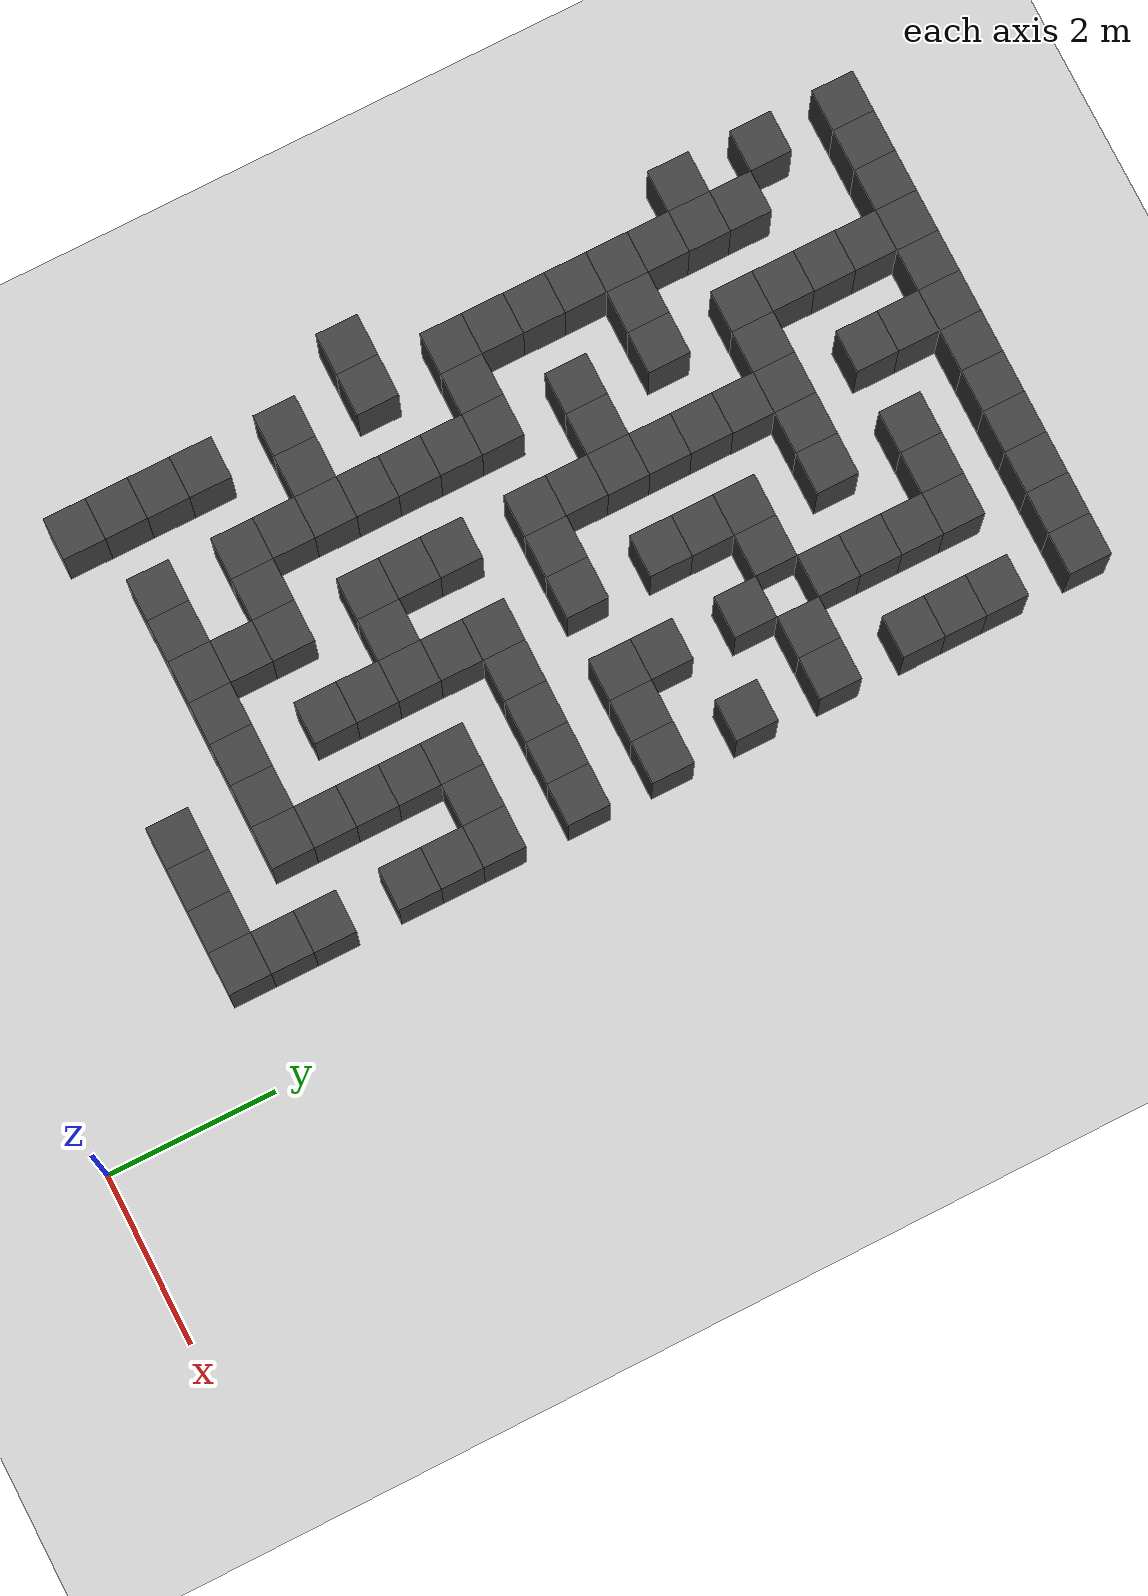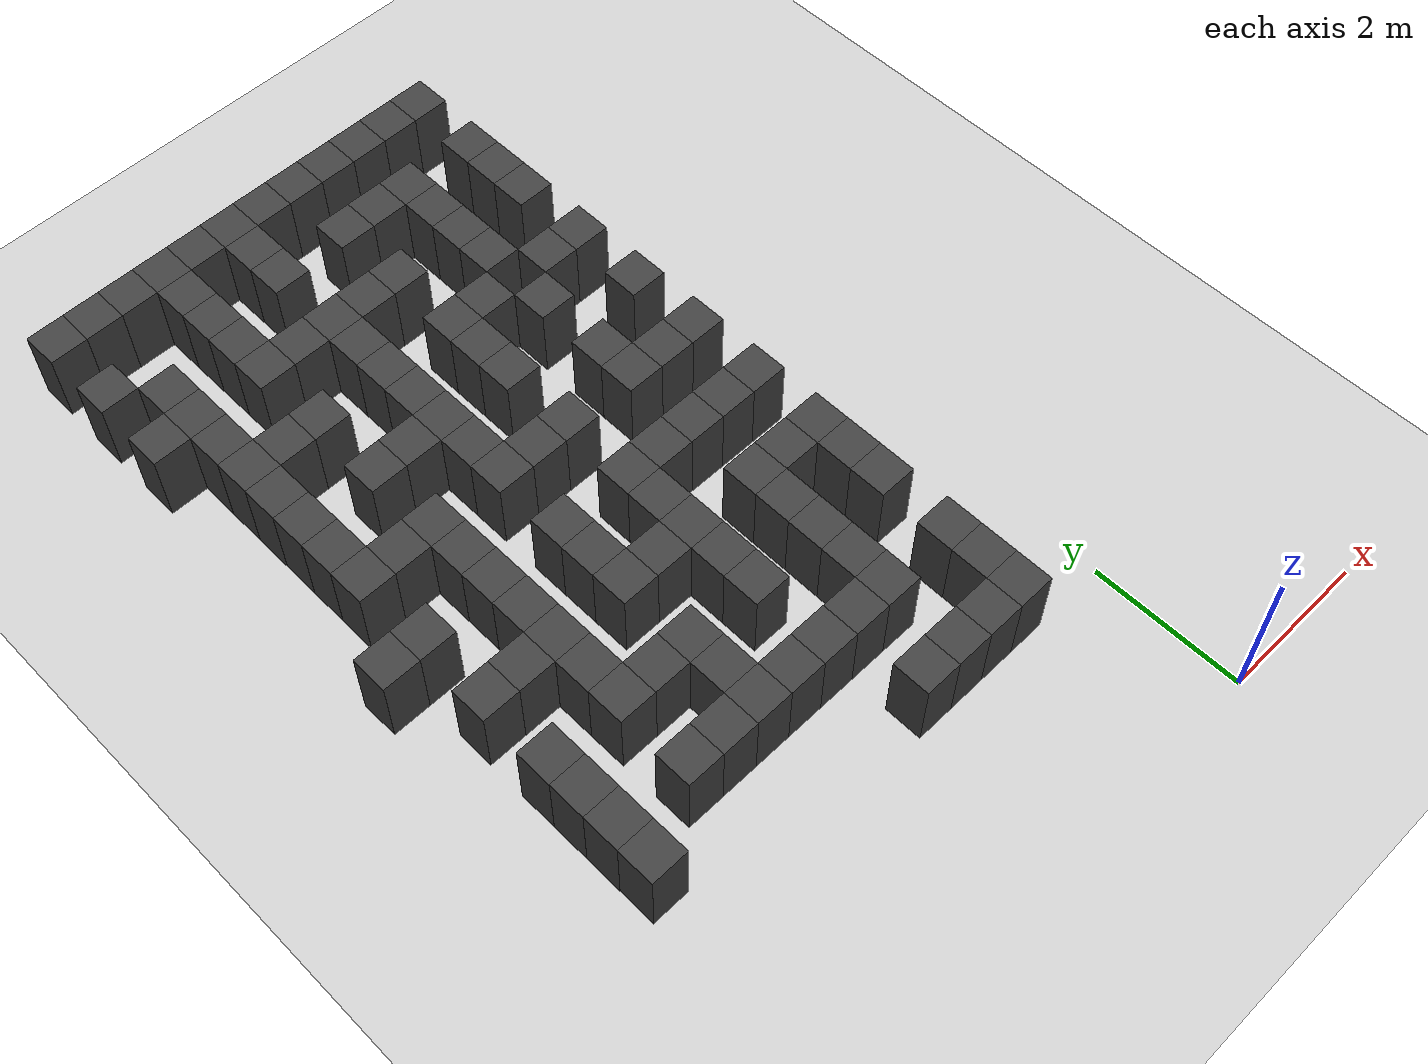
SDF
<sdf version="1.7">
 <world name="map_18505">
  <model name="ground_plane">
   <static>true</static>
   <link name="link">
    <collision name="collision">
     <geometry><plane><normal>0 0 1</normal><size>200 200</size></plane></geometry>
    </collision>
    <visual name="visual">
     <geometry><plane><normal>0 0 1</normal><size>200 200</size></plane></geometry>
     <material><ambient>0.8 0.8 0.8 1</ambient><diffuse>0.8 0.8 0.8 1</diffuse></material>
    </visual>
   </link>
  </model>
  <model name="maze_environment">
   <static>true</static>
   <link name="wall_11">
    <pose>-6.750 12.250 0.500 0 0 0</pose>
    <collision name="col"><geometry><box><size>0.5 0.5 1.0</size></box></geometry></collision>
    <visual name="vis">
     <geometry><box><size>0.5 0.5 1.0</size></box></geometry>
     <material><ambient>0.15 0.15 0.15 1</ambient><diffuse>0.25 0.25 0.25 1</diffuse></material>
    </visual>
   </link>
   <link name="wall_12">
    <pose>-6.250 12.250 0.500 0 0 0</pose>
    <collision name="col"><geometry><box><size>0.5 0.5 1.0</size></box></geometry></collision>
    <visual name="vis">
     <geometry><box><size>0.5 0.5 1.0</size></box></geometry>
     <material><ambient>0.15 0.15 0.15 1</ambient><diffuse>0.25 0.25 0.25 1</diffuse></material>
    </visual>
   </link>
   <link name="wall_13">
    <pose>-5.750 12.250 0.500 0 0 0</pose>
    <collision name="col"><geometry><box><size>0.5 0.5 1.0</size></box></geometry></collision>
    <visual name="vis">
     <geometry><box><size>0.5 0.5 1.0</size></box></geometry>
     <material><ambient>0.15 0.15 0.15 1</ambient><diffuse>0.25 0.25 0.25 1</diffuse></material>
    </visual>
   </link>
   <link name="wall_14">
    <pose>-5.250 12.250 0.500 0 0 0</pose>
    <collision name="col"><geometry><box><size>0.5 0.5 1.0</size></box></geometry></collision>
    <visual name="vis">
     <geometry><box><size>0.5 0.5 1.0</size></box></geometry>
     <material><ambient>0.15 0.15 0.15 1</ambient><diffuse>0.25 0.25 0.25 1</diffuse></material>
    </visual>
   </link>
   <link name="wall_15">
    <pose>-4.750 12.250 0.500 0 0 0</pose>
    <collision name="col"><geometry><box><size>0.5 0.5 1.0</size></box></geometry></collision>
    <visual name="vis">
     <geometry><box><size>0.5 0.5 1.0</size></box></geometry>
     <material><ambient>0.15 0.15 0.15 1</ambient><diffuse>0.25 0.25 0.25 1</diffuse></material>
    </visual>
   </link>
   <link name="wall_16">
    <pose>-4.250 12.250 0.500 0 0 0</pose>
    <collision name="col"><geometry><box><size>0.5 0.5 1.0</size></box></geometry></collision>
    <visual name="vis">
     <geometry><box><size>0.5 0.5 1.0</size></box></geometry>
     <material><ambient>0.15 0.15 0.15 1</ambient><diffuse>0.25 0.25 0.25 1</diffuse></material>
    </visual>
   </link>
   <link name="wall_17">
    <pose>-3.750 12.250 0.500 0 0 0</pose>
    <collision name="col"><geometry><box><size>0.5 0.5 1.0</size></box></geometry></collision>
    <visual name="vis">
     <geometry><box><size>0.5 0.5 1.0</size></box></geometry>
     <material><ambient>0.15 0.15 0.15 1</ambient><diffuse>0.25 0.25 0.25 1</diffuse></material>
    </visual>
   </link>
   <link name="wall_18">
    <pose>-3.250 12.250 0.500 0 0 0</pose>
    <collision name="col"><geometry><box><size>0.5 0.5 1.0</size></box></geometry></collision>
    <visual name="vis">
     <geometry><box><size>0.5 0.5 1.0</size></box></geometry>
     <material><ambient>0.15 0.15 0.15 1</ambient><diffuse>0.25 0.25 0.25 1</diffuse></material>
    </visual>
   </link>
   <link name="wall_19">
    <pose>-2.750 12.250 0.500 0 0 0</pose>
    <collision name="col"><geometry><box><size>0.5 0.5 1.0</size></box></geometry></collision>
    <visual name="vis">
     <geometry><box><size>0.5 0.5 1.0</size></box></geometry>
     <material><ambient>0.15 0.15 0.15 1</ambient><diffuse>0.25 0.25 0.25 1</diffuse></material>
    </visual>
   </link>
   <link name="wall_20">
    <pose>-2.250 12.250 0.500 0 0 0</pose>
    <collision name="col"><geometry><box><size>0.5 0.5 1.0</size></box></geometry></collision>
    <visual name="vis">
     <geometry><box><size>0.5 0.5 1.0</size></box></geometry>
     <material><ambient>0.15 0.15 0.15 1</ambient><diffuse>0.25 0.25 0.25 1</diffuse></material>
    </visual>
   </link>
   <link name="wall_21">
    <pose>-1.750 12.250 0.500 0 0 0</pose>
    <collision name="col"><geometry><box><size>0.5 0.5 1.0</size></box></geometry></collision>
    <visual name="vis">
     <geometry><box><size>0.5 0.5 1.0</size></box></geometry>
     <material><ambient>0.15 0.15 0.15 1</ambient><diffuse>0.25 0.25 0.25 1</diffuse></material>
    </visual>
   </link>
   <link name="wall_22">
    <pose>-1.250 12.250 0.500 0 0 0</pose>
    <collision name="col"><geometry><box><size>0.5 0.5 1.0</size></box></geometry></collision>
    <visual name="vis">
     <geometry><box><size>0.5 0.5 1.0</size></box></geometry>
     <material><ambient>0.15 0.15 0.15 1</ambient><diffuse>0.25 0.25 0.25 1</diffuse></material>
    </visual>
   </link>
   <link name="wall_52">
    <pose>-5.250 11.750 0.500 0 0 0</pose>
    <collision name="col"><geometry><box><size>0.5 0.5 1.0</size></box></geometry></collision>
    <visual name="vis">
     <geometry><box><size>0.5 0.5 1.0</size></box></geometry>
     <material><ambient>0.15 0.15 0.15 1</ambient><diffuse>0.25 0.25 0.25 1</diffuse></material>
    </visual>
   </link>
   <link name="wall_53">
    <pose>-4.250 11.750 0.500 0 0 0</pose>
    <collision name="col"><geometry><box><size>0.5 0.5 1.0</size></box></geometry></collision>
    <visual name="vis">
     <geometry><box><size>0.5 0.5 1.0</size></box></geometry>
     <material><ambient>0.15 0.15 0.15 1</ambient><diffuse>0.25 0.25 0.25 1</diffuse></material>
    </visual>
   </link>
   <link name="wall_68">
    <pose>-6.750 11.250 0.500 0 0 0</pose>
    <collision name="col"><geometry><box><size>0.5 0.5 1.0</size></box></geometry></collision>
    <visual name="vis">
     <geometry><box><size>0.5 0.5 1.0</size></box></geometry>
     <material><ambient>0.15 0.15 0.15 1</ambient><diffuse>0.25 0.25 0.25 1</diffuse></material>
    </visual>
   </link>
   <link name="wall_69">
    <pose>-5.250 11.250 0.500 0 0 0</pose>
    <collision name="col"><geometry><box><size>0.5 0.5 1.0</size></box></geometry></collision>
    <visual name="vis">
     <geometry><box><size>0.5 0.5 1.0</size></box></geometry>
     <material><ambient>0.15 0.15 0.15 1</ambient><diffuse>0.25 0.25 0.25 1</diffuse></material>
    </visual>
   </link>
   <link name="wall_70">
    <pose>-4.250 11.250 0.500 0 0 0</pose>
    <collision name="col"><geometry><box><size>0.5 0.5 1.0</size></box></geometry></collision>
    <visual name="vis">
     <geometry><box><size>0.5 0.5 1.0</size></box></geometry>
     <material><ambient>0.15 0.15 0.15 1</ambient><diffuse>0.25 0.25 0.25 1</diffuse></material>
    </visual>
   </link>
   <link name="wall_71">
    <pose>-3.250 11.250 0.500 0 0 0</pose>
    <collision name="col"><geometry><box><size>0.5 0.5 1.0</size></box></geometry></collision>
    <visual name="vis">
     <geometry><box><size>0.5 0.5 1.0</size></box></geometry>
     <material><ambient>0.15 0.15 0.15 1</ambient><diffuse>0.25 0.25 0.25 1</diffuse></material>
    </visual>
   </link>
   <link name="wall_72">
    <pose>-2.750 11.250 0.500 0 0 0</pose>
    <collision name="col"><geometry><box><size>0.5 0.5 1.0</size></box></geometry></collision>
    <visual name="vis">
     <geometry><box><size>0.5 0.5 1.0</size></box></geometry>
     <material><ambient>0.15 0.15 0.15 1</ambient><diffuse>0.25 0.25 0.25 1</diffuse></material>
    </visual>
   </link>
   <link name="wall_73">
    <pose>-2.250 11.250 0.500 0 0 0</pose>
    <collision name="col"><geometry><box><size>0.5 0.5 1.0</size></box></geometry></collision>
    <visual name="vis">
     <geometry><box><size>0.5 0.5 1.0</size></box></geometry>
     <material><ambient>0.15 0.15 0.15 1</ambient><diffuse>0.25 0.25 0.25 1</diffuse></material>
    </visual>
   </link>
   <link name="wall_74">
    <pose>-1.250 11.250 0.500 0 0 0</pose>
    <collision name="col"><geometry><box><size>0.5 0.5 1.0</size></box></geometry></collision>
    <visual name="vis">
     <geometry><box><size>0.5 0.5 1.0</size></box></geometry>
     <material><ambient>0.15 0.15 0.15 1</ambient><diffuse>0.25 0.25 0.25 1</diffuse></material>
    </visual>
   </link>
   <link name="wall_98">
    <pose>-6.250 10.750 0.500 0 0 0</pose>
    <collision name="col"><geometry><box><size>0.5 0.5 1.0</size></box></geometry></collision>
    <visual name="vis">
     <geometry><box><size>0.5 0.5 1.0</size></box></geometry>
     <material><ambient>0.15 0.15 0.15 1</ambient><diffuse>0.25 0.25 0.25 1</diffuse></material>
    </visual>
   </link>
   <link name="wall_99">
    <pose>-5.250 10.750 0.500 0 0 0</pose>
    <collision name="col"><geometry><box><size>0.5 0.5 1.0</size></box></geometry></collision>
    <visual name="vis">
     <geometry><box><size>0.5 0.5 1.0</size></box></geometry>
     <material><ambient>0.15 0.15 0.15 1</ambient><diffuse>0.25 0.25 0.25 1</diffuse></material>
    </visual>
   </link>
   <link name="wall_100">
    <pose>-2.250 10.750 0.500 0 0 0</pose>
    <collision name="col"><geometry><box><size>0.5 0.5 1.0</size></box></geometry></collision>
    <visual name="vis">
     <geometry><box><size>0.5 0.5 1.0</size></box></geometry>
     <material><ambient>0.15 0.15 0.15 1</ambient><diffuse>0.25 0.25 0.25 1</diffuse></material>
    </visual>
   </link>
   <link name="wall_101">
    <pose>-1.250 10.750 0.500 0 0 0</pose>
    <collision name="col"><geometry><box><size>0.5 0.5 1.0</size></box></geometry></collision>
    <visual name="vis">
     <geometry><box><size>0.5 0.5 1.0</size></box></geometry>
     <material><ambient>0.15 0.15 0.15 1</ambient><diffuse>0.25 0.25 0.25 1</diffuse></material>
    </visual>
   </link>
   <link name="wall_116">
    <pose>-6.750 10.250 0.500 0 0 0</pose>
    <collision name="col"><geometry><box><size>0.5 0.5 1.0</size></box></geometry></collision>
    <visual name="vis">
     <geometry><box><size>0.5 0.5 1.0</size></box></geometry>
     <material><ambient>0.15 0.15 0.15 1</ambient><diffuse>0.25 0.25 0.25 1</diffuse></material>
    </visual>
   </link>
   <link name="wall_117">
    <pose>-6.250 10.250 0.500 0 0 0</pose>
    <collision name="col"><geometry><box><size>0.5 0.5 1.0</size></box></geometry></collision>
    <visual name="vis">
     <geometry><box><size>0.5 0.5 1.0</size></box></geometry>
     <material><ambient>0.15 0.15 0.15 1</ambient><diffuse>0.25 0.25 0.25 1</diffuse></material>
    </visual>
   </link>
   <link name="wall_118">
    <pose>-5.250 10.250 0.500 0 0 0</pose>
    <collision name="col"><geometry><box><size>0.5 0.5 1.0</size></box></geometry></collision>
    <visual name="vis">
     <geometry><box><size>0.5 0.5 1.0</size></box></geometry>
     <material><ambient>0.15 0.15 0.15 1</ambient><diffuse>0.25 0.25 0.25 1</diffuse></material>
    </visual>
   </link>
   <link name="wall_119">
    <pose>-4.750 10.250 0.500 0 0 0</pose>
    <collision name="col"><geometry><box><size>0.5 0.5 1.0</size></box></geometry></collision>
    <visual name="vis">
     <geometry><box><size>0.5 0.5 1.0</size></box></geometry>
     <material><ambient>0.15 0.15 0.15 1</ambient><diffuse>0.25 0.25 0.25 1</diffuse></material>
    </visual>
   </link>
   <link name="wall_120">
    <pose>-4.250 10.250 0.500 0 0 0</pose>
    <collision name="col"><geometry><box><size>0.5 0.5 1.0</size></box></geometry></collision>
    <visual name="vis">
     <geometry><box><size>0.5 0.5 1.0</size></box></geometry>
     <material><ambient>0.15 0.15 0.15 1</ambient><diffuse>0.25 0.25 0.25 1</diffuse></material>
    </visual>
   </link>
   <link name="wall_121">
    <pose>-3.750 10.250 0.500 0 0 0</pose>
    <collision name="col"><geometry><box><size>0.5 0.5 1.0</size></box></geometry></collision>
    <visual name="vis">
     <geometry><box><size>0.5 0.5 1.0</size></box></geometry>
     <material><ambient>0.15 0.15 0.15 1</ambient><diffuse>0.25 0.25 0.25 1</diffuse></material>
    </visual>
   </link>
   <link name="wall_122">
    <pose>-3.250 10.250 0.500 0 0 0</pose>
    <collision name="col"><geometry><box><size>0.5 0.5 1.0</size></box></geometry></collision>
    <visual name="vis">
     <geometry><box><size>0.5 0.5 1.0</size></box></geometry>
     <material><ambient>0.15 0.15 0.15 1</ambient><diffuse>0.25 0.25 0.25 1</diffuse></material>
    </visual>
   </link>
   <link name="wall_123">
    <pose>-2.250 10.250 0.500 0 0 0</pose>
    <collision name="col"><geometry><box><size>0.5 0.5 1.0</size></box></geometry></collision>
    <visual name="vis">
     <geometry><box><size>0.5 0.5 1.0</size></box></geometry>
     <material><ambient>0.15 0.15 0.15 1</ambient><diffuse>0.25 0.25 0.25 1</diffuse></material>
    </visual>
   </link>
   <link name="wall_124">
    <pose>-1.250 10.250 0.500 0 0 0</pose>
    <collision name="col"><geometry><box><size>0.5 0.5 1.0</size></box></geometry></collision>
    <visual name="vis">
     <geometry><box><size>0.5 0.5 1.0</size></box></geometry>
     <material><ambient>0.15 0.15 0.15 1</ambient><diffuse>0.25 0.25 0.25 1</diffuse></material>
    </visual>
   </link>
   <link name="wall_148">
    <pose>-6.250 9.750 0.500 0 0 0</pose>
    <collision name="col"><geometry><box><size>0.5 0.5 1.0</size></box></geometry></collision>
    <visual name="vis">
     <geometry><box><size>0.5 0.5 1.0</size></box></geometry>
     <material><ambient>0.15 0.15 0.15 1</ambient><diffuse>0.25 0.25 0.25 1</diffuse></material>
    </visual>
   </link>
   <link name="wall_149">
    <pose>-4.250 9.750 0.500 0 0 0</pose>
    <collision name="col"><geometry><box><size>0.5 0.5 1.0</size></box></geometry></collision>
    <visual name="vis">
     <geometry><box><size>0.5 0.5 1.0</size></box></geometry>
     <material><ambient>0.15 0.15 0.15 1</ambient><diffuse>0.25 0.25 0.25 1</diffuse></material>
    </visual>
   </link>
   <link name="wall_150">
    <pose>-2.250 9.750 0.500 0 0 0</pose>
    <collision name="col"><geometry><box><size>0.5 0.5 1.0</size></box></geometry></collision>
    <visual name="vis">
     <geometry><box><size>0.5 0.5 1.0</size></box></geometry>
     <material><ambient>0.15 0.15 0.15 1</ambient><diffuse>0.25 0.25 0.25 1</diffuse></material>
    </visual>
   </link>
   <link name="wall_166">
    <pose>-6.250 9.250 0.500 0 0 0</pose>
    <collision name="col"><geometry><box><size>0.5 0.5 1.0</size></box></geometry></collision>
    <visual name="vis">
     <geometry><box><size>0.5 0.5 1.0</size></box></geometry>
     <material><ambient>0.15 0.15 0.15 1</ambient><diffuse>0.25 0.25 0.25 1</diffuse></material>
    </visual>
   </link>
   <link name="wall_167">
    <pose>-5.750 9.250 0.500 0 0 0</pose>
    <collision name="col"><geometry><box><size>0.5 0.5 1.0</size></box></geometry></collision>
    <visual name="vis">
     <geometry><box><size>0.5 0.5 1.0</size></box></geometry>
     <material><ambient>0.15 0.15 0.15 1</ambient><diffuse>0.25 0.25 0.25 1</diffuse></material>
    </visual>
   </link>
   <link name="wall_168">
    <pose>-5.250 9.250 0.500 0 0 0</pose>
    <collision name="col"><geometry><box><size>0.5 0.5 1.0</size></box></geometry></collision>
    <visual name="vis">
     <geometry><box><size>0.5 0.5 1.0</size></box></geometry>
     <material><ambient>0.15 0.15 0.15 1</ambient><diffuse>0.25 0.25 0.25 1</diffuse></material>
    </visual>
   </link>
   <link name="wall_169">
    <pose>-4.250 9.250 0.500 0 0 0</pose>
    <collision name="col"><geometry><box><size>0.5 0.5 1.0</size></box></geometry></collision>
    <visual name="vis">
     <geometry><box><size>0.5 0.5 1.0</size></box></geometry>
     <material><ambient>0.15 0.15 0.15 1</ambient><diffuse>0.25 0.25 0.25 1</diffuse></material>
    </visual>
   </link>
   <link name="wall_170">
    <pose>-3.250 9.250 0.500 0 0 0</pose>
    <collision name="col"><geometry><box><size>0.5 0.5 1.0</size></box></geometry></collision>
    <visual name="vis">
     <geometry><box><size>0.5 0.5 1.0</size></box></geometry>
     <material><ambient>0.15 0.15 0.15 1</ambient><diffuse>0.25 0.25 0.25 1</diffuse></material>
    </visual>
   </link>
   <link name="wall_171">
    <pose>-2.750 9.250 0.500 0 0 0</pose>
    <collision name="col"><geometry><box><size>0.5 0.5 1.0</size></box></geometry></collision>
    <visual name="vis">
     <geometry><box><size>0.5 0.5 1.0</size></box></geometry>
     <material><ambient>0.15 0.15 0.15 1</ambient><diffuse>0.25 0.25 0.25 1</diffuse></material>
    </visual>
   </link>
   <link name="wall_172">
    <pose>-1.750 9.250 0.500 0 0 0</pose>
    <collision name="col"><geometry><box><size>0.5 0.5 1.0</size></box></geometry></collision>
    <visual name="vis">
     <geometry><box><size>0.5 0.5 1.0</size></box></geometry>
     <material><ambient>0.15 0.15 0.15 1</ambient><diffuse>0.25 0.25 0.25 1</diffuse></material>
    </visual>
   </link>
   <link name="wall_173">
    <pose>-1.250 9.250 0.500 0 0 0</pose>
    <collision name="col"><geometry><box><size>0.5 0.5 1.0</size></box></geometry></collision>
    <visual name="vis">
     <geometry><box><size>0.5 0.5 1.0</size></box></geometry>
     <material><ambient>0.15 0.15 0.15 1</ambient><diffuse>0.25 0.25 0.25 1</diffuse></material>
    </visual>
   </link>
   <link name="wall_197">
    <pose>-6.250 8.750 0.500 0 0 0</pose>
    <collision name="col"><geometry><box><size>0.5 0.5 1.0</size></box></geometry></collision>
    <visual name="vis">
     <geometry><box><size>0.5 0.5 1.0</size></box></geometry>
     <material><ambient>0.15 0.15 0.15 1</ambient><diffuse>0.25 0.25 0.25 1</diffuse></material>
    </visual>
   </link>
   <link name="wall_198">
    <pose>-4.250 8.750 0.500 0 0 0</pose>
    <collision name="col"><geometry><box><size>0.5 0.5 1.0</size></box></geometry></collision>
    <visual name="vis">
     <geometry><box><size>0.5 0.5 1.0</size></box></geometry>
     <material><ambient>0.15 0.15 0.15 1</ambient><diffuse>0.25 0.25 0.25 1</diffuse></material>
    </visual>
   </link>
   <link name="wall_199">
    <pose>-3.250 8.750 0.500 0 0 0</pose>
    <collision name="col"><geometry><box><size>0.5 0.5 1.0</size></box></geometry></collision>
    <visual name="vis">
     <geometry><box><size>0.5 0.5 1.0</size></box></geometry>
     <material><ambient>0.15 0.15 0.15 1</ambient><diffuse>0.25 0.25 0.25 1</diffuse></material>
    </visual>
   </link>
   <link name="wall_200">
    <pose>-2.250 8.750 0.500 0 0 0</pose>
    <collision name="col"><geometry><box><size>0.5 0.5 1.0</size></box></geometry></collision>
    <visual name="vis">
     <geometry><box><size>0.5 0.5 1.0</size></box></geometry>
     <material><ambient>0.15 0.15 0.15 1</ambient><diffuse>0.25 0.25 0.25 1</diffuse></material>
    </visual>
   </link>
   <link name="wall_218">
    <pose>-6.250 8.250 0.500 0 0 0</pose>
    <collision name="col"><geometry><box><size>0.5 0.5 1.0</size></box></geometry></collision>
    <visual name="vis">
     <geometry><box><size>0.5 0.5 1.0</size></box></geometry>
     <material><ambient>0.15 0.15 0.15 1</ambient><diffuse>0.25 0.25 0.25 1</diffuse></material>
    </visual>
   </link>
   <link name="wall_219">
    <pose>-5.250 8.250 0.500 0 0 0</pose>
    <collision name="col"><geometry><box><size>0.5 0.5 1.0</size></box></geometry></collision>
    <visual name="vis">
     <geometry><box><size>0.5 0.5 1.0</size></box></geometry>
     <material><ambient>0.15 0.15 0.15 1</ambient><diffuse>0.25 0.25 0.25 1</diffuse></material>
    </visual>
   </link>
   <link name="wall_220">
    <pose>-4.750 8.250 0.500 0 0 0</pose>
    <collision name="col"><geometry><box><size>0.5 0.5 1.0</size></box></geometry></collision>
    <visual name="vis">
     <geometry><box><size>0.5 0.5 1.0</size></box></geometry>
     <material><ambient>0.15 0.15 0.15 1</ambient><diffuse>0.25 0.25 0.25 1</diffuse></material>
    </visual>
   </link>
   <link name="wall_221">
    <pose>-4.250 8.250 0.500 0 0 0</pose>
    <collision name="col"><geometry><box><size>0.5 0.5 1.0</size></box></geometry></collision>
    <visual name="vis">
     <geometry><box><size>0.5 0.5 1.0</size></box></geometry>
     <material><ambient>0.15 0.15 0.15 1</ambient><diffuse>0.25 0.25 0.25 1</diffuse></material>
    </visual>
   </link>
   <link name="wall_222">
    <pose>-3.250 8.250 0.500 0 0 0</pose>
    <collision name="col"><geometry><box><size>0.5 0.5 1.0</size></box></geometry></collision>
    <visual name="vis">
     <geometry><box><size>0.5 0.5 1.0</size></box></geometry>
     <material><ambient>0.15 0.15 0.15 1</ambient><diffuse>0.25 0.25 0.25 1</diffuse></material>
    </visual>
   </link>
   <link name="wall_223">
    <pose>-1.250 8.250 0.500 0 0 0</pose>
    <collision name="col"><geometry><box><size>0.5 0.5 1.0</size></box></geometry></collision>
    <visual name="vis">
     <geometry><box><size>0.5 0.5 1.0</size></box></geometry>
     <material><ambient>0.15 0.15 0.15 1</ambient><diffuse>0.25 0.25 0.25 1</diffuse></material>
    </visual>
   </link>
   <link name="wall_246">
    <pose>-6.250 7.750 0.500 0 0 0</pose>
    <collision name="col"><geometry><box><size>0.5 0.5 1.0</size></box></geometry></collision>
    <visual name="vis">
     <geometry><box><size>0.5 0.5 1.0</size></box></geometry>
     <material><ambient>0.15 0.15 0.15 1</ambient><diffuse>0.25 0.25 0.25 1</diffuse></material>
    </visual>
   </link>
   <link name="wall_247">
    <pose>-4.250 7.750 0.500 0 0 0</pose>
    <collision name="col"><geometry><box><size>0.5 0.5 1.0</size></box></geometry></collision>
    <visual name="vis">
     <geometry><box><size>0.5 0.5 1.0</size></box></geometry>
     <material><ambient>0.15 0.15 0.15 1</ambient><diffuse>0.25 0.25 0.25 1</diffuse></material>
    </visual>
   </link>
   <link name="wall_248">
    <pose>-2.250 7.750 0.500 0 0 0</pose>
    <collision name="col"><geometry><box><size>0.5 0.5 1.0</size></box></geometry></collision>
    <visual name="vis">
     <geometry><box><size>0.5 0.5 1.0</size></box></geometry>
     <material><ambient>0.15 0.15 0.15 1</ambient><diffuse>0.25 0.25 0.25 1</diffuse></material>
    </visual>
   </link>
   <link name="wall_265">
    <pose>-6.250 7.250 0.500 0 0 0</pose>
    <collision name="col"><geometry><box><size>0.5 0.5 1.0</size></box></geometry></collision>
    <visual name="vis">
     <geometry><box><size>0.5 0.5 1.0</size></box></geometry>
     <material><ambient>0.15 0.15 0.15 1</ambient><diffuse>0.25 0.25 0.25 1</diffuse></material>
    </visual>
   </link>
   <link name="wall_266">
    <pose>-5.750 7.250 0.500 0 0 0</pose>
    <collision name="col"><geometry><box><size>0.5 0.5 1.0</size></box></geometry></collision>
    <visual name="vis">
     <geometry><box><size>0.5 0.5 1.0</size></box></geometry>
     <material><ambient>0.15 0.15 0.15 1</ambient><diffuse>0.25 0.25 0.25 1</diffuse></material>
    </visual>
   </link>
   <link name="wall_267">
    <pose>-5.250 7.250 0.500 0 0 0</pose>
    <collision name="col"><geometry><box><size>0.5 0.5 1.0</size></box></geometry></collision>
    <visual name="vis">
     <geometry><box><size>0.5 0.5 1.0</size></box></geometry>
     <material><ambient>0.15 0.15 0.15 1</ambient><diffuse>0.25 0.25 0.25 1</diffuse></material>
    </visual>
   </link>
   <link name="wall_268">
    <pose>-4.250 7.250 0.500 0 0 0</pose>
    <collision name="col"><geometry><box><size>0.5 0.5 1.0</size></box></geometry></collision>
    <visual name="vis">
     <geometry><box><size>0.5 0.5 1.0</size></box></geometry>
     <material><ambient>0.15 0.15 0.15 1</ambient><diffuse>0.25 0.25 0.25 1</diffuse></material>
    </visual>
   </link>
   <link name="wall_269">
    <pose>-3.750 7.250 0.500 0 0 0</pose>
    <collision name="col"><geometry><box><size>0.5 0.5 1.0</size></box></geometry></collision>
    <visual name="vis">
     <geometry><box><size>0.5 0.5 1.0</size></box></geometry>
     <material><ambient>0.15 0.15 0.15 1</ambient><diffuse>0.25 0.25 0.25 1</diffuse></material>
    </visual>
   </link>
   <link name="wall_270">
    <pose>-3.250 7.250 0.500 0 0 0</pose>
    <collision name="col"><geometry><box><size>0.5 0.5 1.0</size></box></geometry></collision>
    <visual name="vis">
     <geometry><box><size>0.5 0.5 1.0</size></box></geometry>
     <material><ambient>0.15 0.15 0.15 1</ambient><diffuse>0.25 0.25 0.25 1</diffuse></material>
    </visual>
   </link>
   <link name="wall_271">
    <pose>-2.250 7.250 0.500 0 0 0</pose>
    <collision name="col"><geometry><box><size>0.5 0.5 1.0</size></box></geometry></collision>
    <visual name="vis">
     <geometry><box><size>0.5 0.5 1.0</size></box></geometry>
     <material><ambient>0.15 0.15 0.15 1</ambient><diffuse>0.25 0.25 0.25 1</diffuse></material>
    </visual>
   </link>
   <link name="wall_272">
    <pose>-1.750 7.250 0.500 0 0 0</pose>
    <collision name="col"><geometry><box><size>0.5 0.5 1.0</size></box></geometry></collision>
    <visual name="vis">
     <geometry><box><size>0.5 0.5 1.0</size></box></geometry>
     <material><ambient>0.15 0.15 0.15 1</ambient><diffuse>0.25 0.25 0.25 1</diffuse></material>
    </visual>
   </link>
   <link name="wall_273">
    <pose>-1.250 7.250 0.500 0 0 0</pose>
    <collision name="col"><geometry><box><size>0.5 0.5 1.0</size></box></geometry></collision>
    <visual name="vis">
     <geometry><box><size>0.5 0.5 1.0</size></box></geometry>
     <material><ambient>0.15 0.15 0.15 1</ambient><diffuse>0.25 0.25 0.25 1</diffuse></material>
    </visual>
   </link>
   <link name="wall_297">
    <pose>-5.250 6.750 0.500 0 0 0</pose>
    <collision name="col"><geometry><box><size>0.5 0.5 1.0</size></box></geometry></collision>
    <visual name="vis">
     <geometry><box><size>0.5 0.5 1.0</size></box></geometry>
     <material><ambient>0.15 0.15 0.15 1</ambient><diffuse>0.25 0.25 0.25 1</diffuse></material>
    </visual>
   </link>
   <link name="wall_314">
    <pose>-6.750 6.250 0.500 0 0 0</pose>
    <collision name="col"><geometry><box><size>0.5 0.5 1.0</size></box></geometry></collision>
    <visual name="vis">
     <geometry><box><size>0.5 0.5 1.0</size></box></geometry>
     <material><ambient>0.15 0.15 0.15 1</ambient><diffuse>0.25 0.25 0.25 1</diffuse></material>
    </visual>
   </link>
   <link name="wall_315">
    <pose>-6.250 6.250 0.500 0 0 0</pose>
    <collision name="col"><geometry><box><size>0.5 0.5 1.0</size></box></geometry></collision>
    <visual name="vis">
     <geometry><box><size>0.5 0.5 1.0</size></box></geometry>
     <material><ambient>0.15 0.15 0.15 1</ambient><diffuse>0.25 0.25 0.25 1</diffuse></material>
    </visual>
   </link>
   <link name="wall_316">
    <pose>-5.250 6.250 0.500 0 0 0</pose>
    <collision name="col"><geometry><box><size>0.5 0.5 1.0</size></box></geometry></collision>
    <visual name="vis">
     <geometry><box><size>0.5 0.5 1.0</size></box></geometry>
     <material><ambient>0.15 0.15 0.15 1</ambient><diffuse>0.25 0.25 0.25 1</diffuse></material>
    </visual>
   </link>
   <link name="wall_317">
    <pose>-4.250 6.250 0.500 0 0 0</pose>
    <collision name="col"><geometry><box><size>0.5 0.5 1.0</size></box></geometry></collision>
    <visual name="vis">
     <geometry><box><size>0.5 0.5 1.0</size></box></geometry>
     <material><ambient>0.15 0.15 0.15 1</ambient><diffuse>0.25 0.25 0.25 1</diffuse></material>
    </visual>
   </link>
   <link name="wall_318">
    <pose>-3.250 6.250 0.500 0 0 0</pose>
    <collision name="col"><geometry><box><size>0.5 0.5 1.0</size></box></geometry></collision>
    <visual name="vis">
     <geometry><box><size>0.5 0.5 1.0</size></box></geometry>
     <material><ambient>0.15 0.15 0.15 1</ambient><diffuse>0.25 0.25 0.25 1</diffuse></material>
    </visual>
   </link>
   <link name="wall_319">
    <pose>-2.750 6.250 0.500 0 0 0</pose>
    <collision name="col"><geometry><box><size>0.5 0.5 1.0</size></box></geometry></collision>
    <visual name="vis">
     <geometry><box><size>0.5 0.5 1.0</size></box></geometry>
     <material><ambient>0.15 0.15 0.15 1</ambient><diffuse>0.25 0.25 0.25 1</diffuse></material>
    </visual>
   </link>
   <link name="wall_320">
    <pose>-2.250 6.250 0.500 0 0 0</pose>
    <collision name="col"><geometry><box><size>0.5 0.5 1.0</size></box></geometry></collision>
    <visual name="vis">
     <geometry><box><size>0.5 0.5 1.0</size></box></geometry>
     <material><ambient>0.15 0.15 0.15 1</ambient><diffuse>0.25 0.25 0.25 1</diffuse></material>
    </visual>
   </link>
   <link name="wall_321">
    <pose>-1.750 6.250 0.500 0 0 0</pose>
    <collision name="col"><geometry><box><size>0.5 0.5 1.0</size></box></geometry></collision>
    <visual name="vis">
     <geometry><box><size>0.5 0.5 1.0</size></box></geometry>
     <material><ambient>0.15 0.15 0.15 1</ambient><diffuse>0.25 0.25 0.25 1</diffuse></material>
    </visual>
   </link>
   <link name="wall_322">
    <pose>-1.250 6.250 0.500 0 0 0</pose>
    <collision name="col"><geometry><box><size>0.5 0.5 1.0</size></box></geometry></collision>
    <visual name="vis">
     <geometry><box><size>0.5 0.5 1.0</size></box></geometry>
     <material><ambient>0.15 0.15 0.15 1</ambient><diffuse>0.25 0.25 0.25 1</diffuse></material>
    </visual>
   </link>
   <link name="wall_346">
    <pose>-5.250 5.750 0.500 0 0 0</pose>
    <collision name="col"><geometry><box><size>0.5 0.5 1.0</size></box></geometry></collision>
    <visual name="vis">
     <geometry><box><size>0.5 0.5 1.0</size></box></geometry>
     <material><ambient>0.15 0.15 0.15 1</ambient><diffuse>0.25 0.25 0.25 1</diffuse></material>
    </visual>
   </link>
   <link name="wall_347">
    <pose>-4.250 5.750 0.500 0 0 0</pose>
    <collision name="col"><geometry><box><size>0.5 0.5 1.0</size></box></geometry></collision>
    <visual name="vis">
     <geometry><box><size>0.5 0.5 1.0</size></box></geometry>
     <material><ambient>0.15 0.15 0.15 1</ambient><diffuse>0.25 0.25 0.25 1</diffuse></material>
    </visual>
   </link>
   <link name="wall_348">
    <pose>-3.250 5.750 0.500 0 0 0</pose>
    <collision name="col"><geometry><box><size>0.5 0.5 1.0</size></box></geometry></collision>
    <visual name="vis">
     <geometry><box><size>0.5 0.5 1.0</size></box></geometry>
     <material><ambient>0.15 0.15 0.15 1</ambient><diffuse>0.25 0.25 0.25 1</diffuse></material>
    </visual>
   </link>
   <link name="wall_367">
    <pose>-6.250 5.250 0.500 0 0 0</pose>
    <collision name="col"><geometry><box><size>0.5 0.5 1.0</size></box></geometry></collision>
    <visual name="vis">
     <geometry><box><size>0.5 0.5 1.0</size></box></geometry>
     <material><ambient>0.15 0.15 0.15 1</ambient><diffuse>0.25 0.25 0.25 1</diffuse></material>
    </visual>
   </link>
   <link name="wall_368">
    <pose>-5.750 5.250 0.500 0 0 0</pose>
    <collision name="col"><geometry><box><size>0.5 0.5 1.0</size></box></geometry></collision>
    <visual name="vis">
     <geometry><box><size>0.5 0.5 1.0</size></box></geometry>
     <material><ambient>0.15 0.15 0.15 1</ambient><diffuse>0.25 0.25 0.25 1</diffuse></material>
    </visual>
   </link>
   <link name="wall_369">
    <pose>-5.250 5.250 0.500 0 0 0</pose>
    <collision name="col"><geometry><box><size>0.5 0.5 1.0</size></box></geometry></collision>
    <visual name="vis">
     <geometry><box><size>0.5 0.5 1.0</size></box></geometry>
     <material><ambient>0.15 0.15 0.15 1</ambient><diffuse>0.25 0.25 0.25 1</diffuse></material>
    </visual>
   </link>
   <link name="wall_370">
    <pose>-4.250 5.250 0.500 0 0 0</pose>
    <collision name="col"><geometry><box><size>0.5 0.5 1.0</size></box></geometry></collision>
    <visual name="vis">
     <geometry><box><size>0.5 0.5 1.0</size></box></geometry>
     <material><ambient>0.15 0.15 0.15 1</ambient><diffuse>0.25 0.25 0.25 1</diffuse></material>
    </visual>
   </link>
   <link name="wall_371">
    <pose>-3.750 5.250 0.500 0 0 0</pose>
    <collision name="col"><geometry><box><size>0.5 0.5 1.0</size></box></geometry></collision>
    <visual name="vis">
     <geometry><box><size>0.5 0.5 1.0</size></box></geometry>
     <material><ambient>0.15 0.15 0.15 1</ambient><diffuse>0.25 0.25 0.25 1</diffuse></material>
    </visual>
   </link>
   <link name="wall_372">
    <pose>-3.250 5.250 0.500 0 0 0</pose>
    <collision name="col"><geometry><box><size>0.5 0.5 1.0</size></box></geometry></collision>
    <visual name="vis">
     <geometry><box><size>0.5 0.5 1.0</size></box></geometry>
     <material><ambient>0.15 0.15 0.15 1</ambient><diffuse>0.25 0.25 0.25 1</diffuse></material>
    </visual>
   </link>
   <link name="wall_373">
    <pose>-2.250 5.250 0.500 0 0 0</pose>
    <collision name="col"><geometry><box><size>0.5 0.5 1.0</size></box></geometry></collision>
    <visual name="vis">
     <geometry><box><size>0.5 0.5 1.0</size></box></geometry>
     <material><ambient>0.15 0.15 0.15 1</ambient><diffuse>0.25 0.25 0.25 1</diffuse></material>
    </visual>
   </link>
   <link name="wall_374">
    <pose>-1.750 5.250 0.500 0 0 0</pose>
    <collision name="col"><geometry><box><size>0.5 0.5 1.0</size></box></geometry></collision>
    <visual name="vis">
     <geometry><box><size>0.5 0.5 1.0</size></box></geometry>
     <material><ambient>0.15 0.15 0.15 1</ambient><diffuse>0.25 0.25 0.25 1</diffuse></material>
    </visual>
   </link>
   <link name="wall_375">
    <pose>-1.250 5.250 0.500 0 0 0</pose>
    <collision name="col"><geometry><box><size>0.5 0.5 1.0</size></box></geometry></collision>
    <visual name="vis">
     <geometry><box><size>0.5 0.5 1.0</size></box></geometry>
     <material><ambient>0.15 0.15 0.15 1</ambient><diffuse>0.25 0.25 0.25 1</diffuse></material>
    </visual>
   </link>
   <link name="wall_398">
    <pose>-5.250 4.750 0.500 0 0 0</pose>
    <collision name="col"><geometry><box><size>0.5 0.5 1.0</size></box></geometry></collision>
    <visual name="vis">
     <geometry><box><size>0.5 0.5 1.0</size></box></geometry>
     <material><ambient>0.15 0.15 0.15 1</ambient><diffuse>0.25 0.25 0.25 1</diffuse></material>
    </visual>
   </link>
   <link name="wall_399">
    <pose>-3.250 4.750 0.500 0 0 0</pose>
    <collision name="col"><geometry><box><size>0.5 0.5 1.0</size></box></geometry></collision>
    <visual name="vis">
     <geometry><box><size>0.5 0.5 1.0</size></box></geometry>
     <material><ambient>0.15 0.15 0.15 1</ambient><diffuse>0.25 0.25 0.25 1</diffuse></material>
    </visual>
   </link>
   <link name="wall_400">
    <pose>-2.250 4.750 0.500 0 0 0</pose>
    <collision name="col"><geometry><box><size>0.5 0.5 1.0</size></box></geometry></collision>
    <visual name="vis">
     <geometry><box><size>0.5 0.5 1.0</size></box></geometry>
     <material><ambient>0.15 0.15 0.15 1</ambient><diffuse>0.25 0.25 0.25 1</diffuse></material>
    </visual>
   </link>
   <link name="wall_401">
    <pose>-1.250 4.750 0.500 0 0 0</pose>
    <collision name="col"><geometry><box><size>0.5 0.5 1.0</size></box></geometry></collision>
    <visual name="vis">
     <geometry><box><size>0.5 0.5 1.0</size></box></geometry>
     <material><ambient>0.15 0.15 0.15 1</ambient><diffuse>0.25 0.25 0.25 1</diffuse></material>
    </visual>
   </link>
   <link name="wall_420">
    <pose>-6.250 4.250 0.500 0 0 0</pose>
    <collision name="col"><geometry><box><size>0.5 0.5 1.0</size></box></geometry></collision>
    <visual name="vis">
     <geometry><box><size>0.5 0.5 1.0</size></box></geometry>
     <material><ambient>0.15 0.15 0.15 1</ambient><diffuse>0.25 0.25 0.25 1</diffuse></material>
    </visual>
   </link>
   <link name="wall_421">
    <pose>-5.250 4.250 0.500 0 0 0</pose>
    <collision name="col"><geometry><box><size>0.5 0.5 1.0</size></box></geometry></collision>
    <visual name="vis">
     <geometry><box><size>0.5 0.5 1.0</size></box></geometry>
     <material><ambient>0.15 0.15 0.15 1</ambient><diffuse>0.25 0.25 0.25 1</diffuse></material>
    </visual>
   </link>
   <link name="wall_422">
    <pose>-4.750 4.250 0.500 0 0 0</pose>
    <collision name="col"><geometry><box><size>0.5 0.5 1.0</size></box></geometry></collision>
    <visual name="vis">
     <geometry><box><size>0.5 0.5 1.0</size></box></geometry>
     <material><ambient>0.15 0.15 0.15 1</ambient><diffuse>0.25 0.25 0.25 1</diffuse></material>
    </visual>
   </link>
   <link name="wall_423">
    <pose>-4.250 4.250 0.500 0 0 0</pose>
    <collision name="col"><geometry><box><size>0.5 0.5 1.0</size></box></geometry></collision>
    <visual name="vis">
     <geometry><box><size>0.5 0.5 1.0</size></box></geometry>
     <material><ambient>0.15 0.15 0.15 1</ambient><diffuse>0.25 0.25 0.25 1</diffuse></material>
    </visual>
   </link>
   <link name="wall_424">
    <pose>-3.250 4.250 0.500 0 0 0</pose>
    <collision name="col"><geometry><box><size>0.5 0.5 1.0</size></box></geometry></collision>
    <visual name="vis">
     <geometry><box><size>0.5 0.5 1.0</size></box></geometry>
     <material><ambient>0.15 0.15 0.15 1</ambient><diffuse>0.25 0.25 0.25 1</diffuse></material>
    </visual>
   </link>
   <link name="wall_425">
    <pose>-2.250 4.250 0.500 0 0 0</pose>
    <collision name="col"><geometry><box><size>0.5 0.5 1.0</size></box></geometry></collision>
    <visual name="vis">
     <geometry><box><size>0.5 0.5 1.0</size></box></geometry>
     <material><ambient>0.15 0.15 0.15 1</ambient><diffuse>0.25 0.25 0.25 1</diffuse></material>
    </visual>
   </link>
   <link name="wall_426">
    <pose>-1.250 4.250 0.500 0 0 0</pose>
    <collision name="col"><geometry><box><size>0.5 0.5 1.0</size></box></geometry></collision>
    <visual name="vis">
     <geometry><box><size>0.5 0.5 1.0</size></box></geometry>
     <material><ambient>0.15 0.15 0.15 1</ambient><diffuse>0.25 0.25 0.25 1</diffuse></material>
    </visual>
   </link>
   <link name="wall_448">
    <pose>-6.250 3.750 0.500 0 0 0</pose>
    <collision name="col"><geometry><box><size>0.5 0.5 1.0</size></box></geometry></collision>
    <visual name="vis">
     <geometry><box><size>0.5 0.5 1.0</size></box></geometry>
     <material><ambient>0.15 0.15 0.15 1</ambient><diffuse>0.25 0.25 0.25 1</diffuse></material>
    </visual>
   </link>
   <link name="wall_449">
    <pose>-4.250 3.750 0.500 0 0 0</pose>
    <collision name="col"><geometry><box><size>0.5 0.5 1.0</size></box></geometry></collision>
    <visual name="vis">
     <geometry><box><size>0.5 0.5 1.0</size></box></geometry>
     <material><ambient>0.15 0.15 0.15 1</ambient><diffuse>0.25 0.25 0.25 1</diffuse></material>
    </visual>
   </link>
   <link name="wall_450">
    <pose>-2.250 3.750 0.500 0 0 0</pose>
    <collision name="col"><geometry><box><size>0.5 0.5 1.0</size></box></geometry></collision>
    <visual name="vis">
     <geometry><box><size>0.5 0.5 1.0</size></box></geometry>
     <material><ambient>0.15 0.15 0.15 1</ambient><diffuse>0.25 0.25 0.25 1</diffuse></material>
    </visual>
   </link>
   <link name="wall_469">
    <pose>-6.250 3.250 0.500 0 0 0</pose>
    <collision name="col"><geometry><box><size>0.5 0.5 1.0</size></box></geometry></collision>
    <visual name="vis">
     <geometry><box><size>0.5 0.5 1.0</size></box></geometry>
     <material><ambient>0.15 0.15 0.15 1</ambient><diffuse>0.25 0.25 0.25 1</diffuse></material>
    </visual>
   </link>
   <link name="wall_470">
    <pose>-5.250 3.250 0.500 0 0 0</pose>
    <collision name="col"><geometry><box><size>0.5 0.5 1.0</size></box></geometry></collision>
    <visual name="vis">
     <geometry><box><size>0.5 0.5 1.0</size></box></geometry>
     <material><ambient>0.15 0.15 0.15 1</ambient><diffuse>0.25 0.25 0.25 1</diffuse></material>
    </visual>
   </link>
   <link name="wall_471">
    <pose>-4.750 3.250 0.500 0 0 0</pose>
    <collision name="col"><geometry><box><size>0.5 0.5 1.0</size></box></geometry></collision>
    <visual name="vis">
     <geometry><box><size>0.5 0.5 1.0</size></box></geometry>
     <material><ambient>0.15 0.15 0.15 1</ambient><diffuse>0.25 0.25 0.25 1</diffuse></material>
    </visual>
   </link>
   <link name="wall_472">
    <pose>-4.250 3.250 0.500 0 0 0</pose>
    <collision name="col"><geometry><box><size>0.5 0.5 1.0</size></box></geometry></collision>
    <visual name="vis">
     <geometry><box><size>0.5 0.5 1.0</size></box></geometry>
     <material><ambient>0.15 0.15 0.15 1</ambient><diffuse>0.25 0.25 0.25 1</diffuse></material>
    </visual>
   </link>
   <link name="wall_473">
    <pose>-3.750 3.250 0.500 0 0 0</pose>
    <collision name="col"><geometry><box><size>0.5 0.5 1.0</size></box></geometry></collision>
    <visual name="vis">
     <geometry><box><size>0.5 0.5 1.0</size></box></geometry>
     <material><ambient>0.15 0.15 0.15 1</ambient><diffuse>0.25 0.25 0.25 1</diffuse></material>
    </visual>
   </link>
   <link name="wall_474">
    <pose>-3.250 3.250 0.500 0 0 0</pose>
    <collision name="col"><geometry><box><size>0.5 0.5 1.0</size></box></geometry></collision>
    <visual name="vis">
     <geometry><box><size>0.5 0.5 1.0</size></box></geometry>
     <material><ambient>0.15 0.15 0.15 1</ambient><diffuse>0.25 0.25 0.25 1</diffuse></material>
    </visual>
   </link>
   <link name="wall_475">
    <pose>-2.750 3.250 0.500 0 0 0</pose>
    <collision name="col"><geometry><box><size>0.5 0.5 1.0</size></box></geometry></collision>
    <visual name="vis">
     <geometry><box><size>0.5 0.5 1.0</size></box></geometry>
     <material><ambient>0.15 0.15 0.15 1</ambient><diffuse>0.25 0.25 0.25 1</diffuse></material>
    </visual>
   </link>
   <link name="wall_476">
    <pose>-2.250 3.250 0.500 0 0 0</pose>
    <collision name="col"><geometry><box><size>0.5 0.5 1.0</size></box></geometry></collision>
    <visual name="vis">
     <geometry><box><size>0.5 0.5 1.0</size></box></geometry>
     <material><ambient>0.15 0.15 0.15 1</ambient><diffuse>0.25 0.25 0.25 1</diffuse></material>
    </visual>
   </link>
   <link name="wall_477">
    <pose>-1.250 3.250 0.500 0 0 0</pose>
    <collision name="col"><geometry><box><size>0.5 0.5 1.0</size></box></geometry></collision>
    <visual name="vis">
     <geometry><box><size>0.5 0.5 1.0</size></box></geometry>
     <material><ambient>0.15 0.15 0.15 1</ambient><diffuse>0.25 0.25 0.25 1</diffuse></material>
    </visual>
   </link>
   <link name="wall_499">
    <pose>-6.250 2.750 0.500 0 0 0</pose>
    <collision name="col"><geometry><box><size>0.5 0.5 1.0</size></box></geometry></collision>
    <visual name="vis">
     <geometry><box><size>0.5 0.5 1.0</size></box></geometry>
     <material><ambient>0.15 0.15 0.15 1</ambient><diffuse>0.25 0.25 0.25 1</diffuse></material>
    </visual>
   </link>
   <link name="wall_500">
    <pose>-1.250 2.750 0.500 0 0 0</pose>
    <collision name="col"><geometry><box><size>0.5 0.5 1.0</size></box></geometry></collision>
    <visual name="vis">
     <geometry><box><size>0.5 0.5 1.0</size></box></geometry>
     <material><ambient>0.15 0.15 0.15 1</ambient><diffuse>0.25 0.25 0.25 1</diffuse></material>
    </visual>
   </link>
   <link name="wall_525">
    <pose>-2.750 2.250 0.500 0 0 0</pose>
    <collision name="col"><geometry><box><size>0.5 0.5 1.0</size></box></geometry></collision>
    <visual name="vis">
     <geometry><box><size>0.5 0.5 1.0</size></box></geometry>
     <material><ambient>0.15 0.15 0.15 1</ambient><diffuse>0.25 0.25 0.25 1</diffuse></material>
    </visual>
   </link>
   <link name="wall_526">
    <pose>-2.250 2.250 0.500 0 0 0</pose>
    <collision name="col"><geometry><box><size>0.5 0.5 1.0</size></box></geometry></collision>
    <visual name="vis">
     <geometry><box><size>0.5 0.5 1.0</size></box></geometry>
     <material><ambient>0.15 0.15 0.15 1</ambient><diffuse>0.25 0.25 0.25 1</diffuse></material>
    </visual>
   </link>
   <link name="wall_527">
    <pose>-1.750 2.250 0.500 0 0 0</pose>
    <collision name="col"><geometry><box><size>0.5 0.5 1.0</size></box></geometry></collision>
    <visual name="vis">
     <geometry><box><size>0.5 0.5 1.0</size></box></geometry>
     <material><ambient>0.15 0.15 0.15 1</ambient><diffuse>0.25 0.25 0.25 1</diffuse></material>
    </visual>
   </link>
   <link name="wall_528">
    <pose>-1.250 2.250 0.500 0 0 0</pose>
    <collision name="col"><geometry><box><size>0.5 0.5 1.0</size></box></geometry></collision>
    <visual name="vis">
     <geometry><box><size>0.5 0.5 1.0</size></box></geometry>
     <material><ambient>0.15 0.15 0.15 1</ambient><diffuse>0.25 0.25 0.25 1</diffuse></material>
    </visual>
   </link>
  </model>
 </world>
</sdf>
